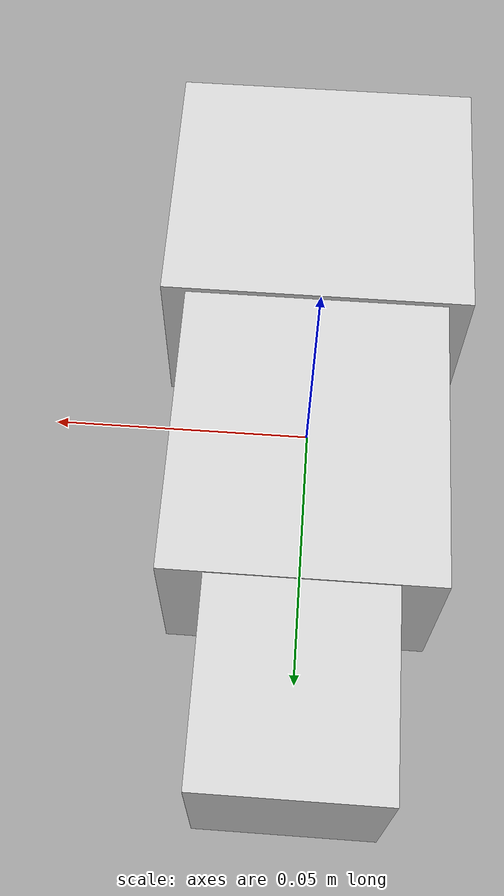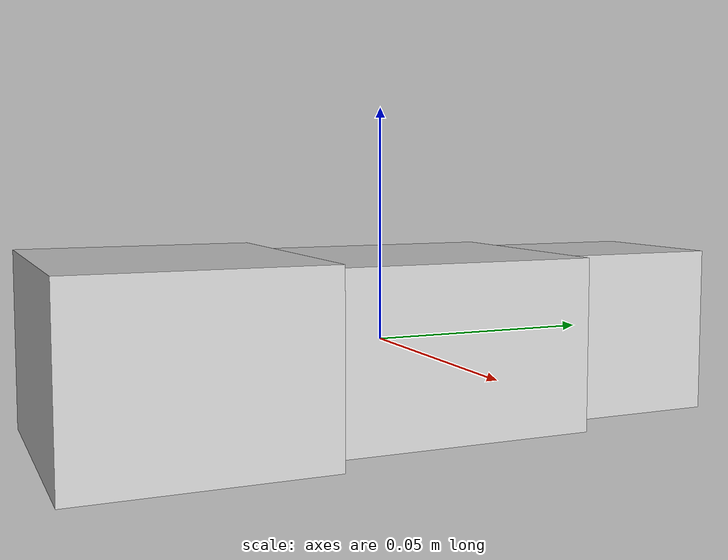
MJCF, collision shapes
<mujoco model="mayo">
  <asset>
  <texture file="meshes/mayo/texture_map.png" name="tex-mayo" type="2d" />
  <material name="mayo" reflectance="0.5" texrepeat="1 1" texture="tex-mayo" texuniform="false" />
  <mesh file="meshes/mayo/visual/mayo_vis.msh" name="mayo_vis" scale="0.01 0.01 0.01" /></asset>
  <worldbody>
    <body>
      <body name="object">
      <geom solimp="0.998 0.998 0.001" solref="0.001 1" density="100" friction="0.95 0.3 0.1" type="mesh" mesh="mayo_vis" conaffinity="0" contype="0" group="1" material="mayo" /><geom solimp="0.998 0.998 0.001" solref="0.001 1" density="100" friction="0.95 0.3 0.1" type="box" pos="-0.00000 0.00661 -0.00000" quat="0.00500 -0.00500 0.00500 0.00500" size="0.01849 0.02552 0.02977" group="0" rgba="0.8 0.8 0.8 0.0" /><geom solimp="0.998 0.998 0.001" solref="0.001 1" density="100" friction="0.95 0.3 0.1" type="box" pos="-0.00000 -0.04700 -0.00000" quat="0.00707 0.00000 0.00707 0.00000" size="0.01963 0.02628 0.03029" group="0" rgba="0.8 0.8 0.8 0.0" /><geom solimp="0.998 0.998 0.001" solref="0.001 1" density="100" friction="0.95 0.3 0.1" type="box" pos="0.00000 0.05362 0.00000" quat="0.00707 0.00707 0.00000 -0.00000" size="0.01712 0.01816 0.01957" group="0" rgba="0.8 0.8 0.8 0.0" /></body>
      <site rgba="0 0 0 0" size="0.005" pos="0 0 -0.06" name="bottom_site" />
      <site rgba="0 0 0 0" size="0.005" pos="0 0 0.04" name="top_site" />
      <site rgba="0 0 0 0" size="0.005" pos="0.025 0.025 0" name="horizontal_radius_site" />
    </body>
  </worldbody>
</mujoco>
